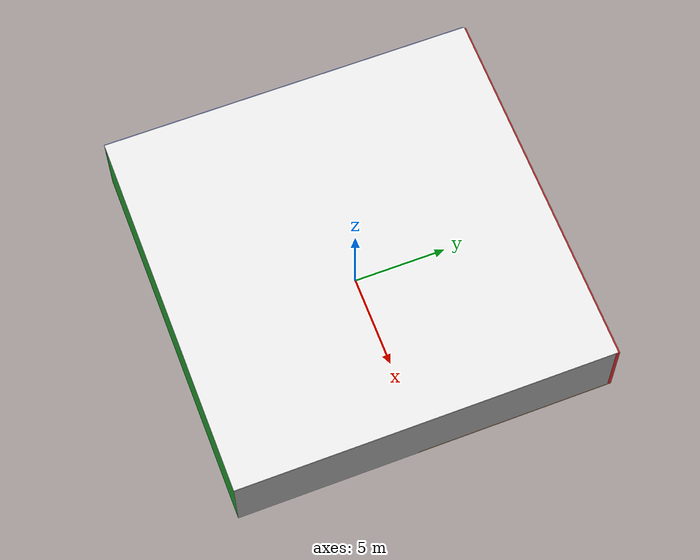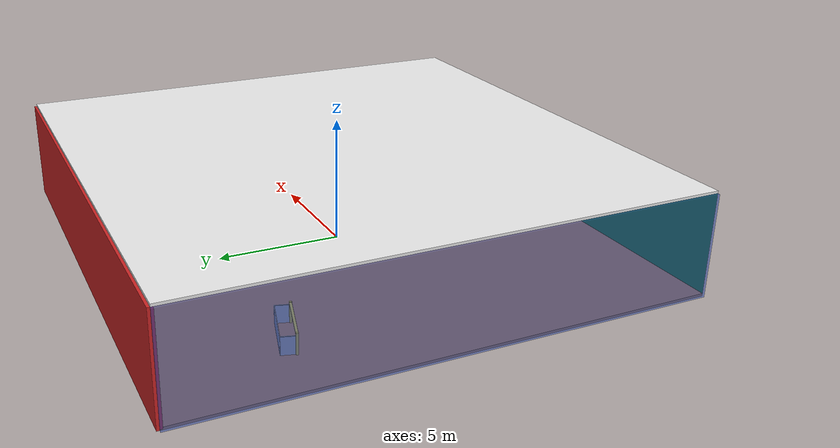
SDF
<sdf version="1.4">
 <world name="default">
  <physics type="ode">
   <max_step_size>0.001</max_step_size>
   <real_time_factor>1</real_time_factor>
   <real_time_update_rate>1000</real_time_update_rate>
   <gravity>0 0 -9.8</gravity>
  </physics>
  <scene><ambient>0.4 0.4 0.4 1</ambient><background>0.7 0.7 0.7 1</background><shadows>1</shadows></scene>
  <model name="Surrounding">
   <static>1</static>
   <link name="Ceiling">
    <collision name="Ceiling_Collision"><geometry><box><size>20 20 0.1</size></box></geometry></collision>
    <visual name="Ceiling_Visual">
     <geometry><box><size>20 20 0.1</size></box></geometry>
     <material>
      <script><uri>file://media/materials/scripts/gazebo.material</uri><name>Gazebo/White</name></script>
     </material>
    </visual>
    <pose>0 0 4.05 0 0 0</pose>
   </link>
   <link name="Wall_South">
    <collision name="Wall_South_Collision">
     <geometry><box><size>20 0 4</size></box></geometry>
     <pose>0 0 2 0 -0 0</pose>
    </collision>
    <visual name="Wall_South_Visual">
     <pose>0 0 2 0 -0 0</pose>
     <geometry><box><size>20 0 4</size></box></geometry>
     <material>
      <script><uri>file://media/materials/scripts/gazebo.material</uri><name>Gazebo/GreenGlow</name></script>
     </material>
    </visual>
    <velocity_decay><linear>0</linear><angular>0</angular></velocity_decay>
    <pose>0 -10 0 0 -0 0</pose>
   </link>
   <link name="Wall_East">
    <collision name="Wall_21_Collision">
     <geometry><box><size>20 0 4</size></box></geometry>
     <pose>0 0 2 0 -0 0</pose>
    </collision>
    <visual name="Wall_21_Visual">
     <pose>0 0 2 0 -0 0</pose>
     <geometry><box><size>20 0 4</size></box></geometry>
     <material>
      <script><uri>file://media/materials/scripts/gazebo.material</uri><name>Gazebo/GreyGradientSky</name></script>
     </material>
    </visual>
    <velocity_decay><linear>0</linear><angular>0</angular></velocity_decay>
    <pose>10 0 0 0 -0 1.5708</pose>
   </link>
   <link name="Wall_North">
    <collision name="Wall_22_Collision">
     <geometry><box><size>20 0.2 4</size></box></geometry>
     <pose>0 0 2 0 -0 0</pose>
    </collision>
    <visual name="Wall_22_Visual">
     <pose>0 0 2 0 -0 0</pose>
     <geometry><box><size>20 0.2 4</size></box></geometry>
     <material>
      <script><uri>file://media/materials/scripts/gazebo.material</uri><name>Gazebo/Red</name></script>
     </material>
    </visual>
    <velocity_decay><linear>0</linear><angular>0</angular></velocity_decay>
    <pose>0 10 0 0 -0 0</pose>
   </link>
   <link name="Wall_West">
    <collision name="Wall_23_Collision">
     <geometry><box><size>20 0.2 4</size></box></geometry>
     <pose>0 0 2 0 -0 0</pose>
    </collision>
    <visual name="Wall_23_Visual">
     <pose>0 0 2 0 -0 0</pose>
     <geometry><box><size>20 0.2 4</size></box></geometry>
     <material>
      <script><uri>file://media/materials/scripts/gazebo.material</uri><name>Gazebo/BlueTransparent</name></script>
     </material>
    </visual>
    <velocity_decay><linear>0</linear><angular>0</angular></velocity_decay>
    <pose>-10 0 0 0 0 -1.5708</pose>
   </link>
   <link name="Ground_link">
    <collision name="collision">
     <pose>0 0 .05 0 -0 0</pose>
     <geometry><box><size>20 20 0.1</size></box></geometry>
    </collision>
    <visual name="visual">
     <pose>0 0 .05 0 -0 0</pose>
     <geometry><box><size>20 20 0.1</size></box></geometry>
     <material>
      <script><uri>file://media/materials/scripts/gazebo.material</uri><name>Gazebo/WoodPallet</name></script>
     </material>
    </visual>
   </link>
   <static>1</static>
  </model>
  <spherical_coordinates>
   <surface_model>EARTH_WGS84</surface_model>
   <latitude_deg>0</latitude_deg>
   <longitude_deg>0</longitude_deg>
   <elevation>0</elevation>
   <heading_deg>0</heading_deg>
  </spherical_coordinates>
  <light name="lightball_0" type="diffuse">
   <diffuse>0.8 0.8 0.8 1</diffuse>
   <specular>0.2 0.2 0.2 1</specular>
   <attenuation>
    <range>100</range>
    <constant>0.7</constant>
    <linear>0.01</linear>
    <quadratic>0.001</quadratic>
   </attenuation>
   <direction>-0.5 0.1 -0.9</direction>
   <pose>9.0708230362 -9.03764051634 1.46250317366 0 0 0</pose>
  </light>
  <light name="lightball_1" type="diffuse">
   <diffuse>0.8 0.8 0.8 1</diffuse>
   <specular>0.2 0.2 0.2 1</specular>
   <attenuation>
    <range>100</range>
    <constant>0.7</constant>
    <linear>0.01</linear>
    <quadratic>0.001</quadratic>
   </attenuation>
   <direction>-0.5 0.1 -0.9</direction>
   <pose>-4.07191006096 -2.72152755741 1.73177012344 0 0 0</pose>
  </light>
  <light name="lightball_2" type="diffuse">
   <diffuse>0.8 0.8 0.8 1</diffuse>
   <specular>0.2 0.2 0.2 1</specular>
   <attenuation>
    <range>100</range>
    <constant>0.7</constant>
    <linear>0.01</linear>
    <quadratic>0.001</quadratic>
   </attenuation>
   <direction>-0.5 0.1 -0.9</direction>
   <pose>2.59763895305 -6.08014963056 1.33725907905 0 0 0</pose>
  </light>
  <light name="lightball_3" type="diffuse">
   <diffuse>0.8 0.8 0.8 1</diffuse>
   <specular>0.2 0.2 0.2 1</specular>
   <attenuation>
    <range>100</range>
    <constant>0.7</constant>
    <linear>0.01</linear>
    <quadratic>0.001</quadratic>
   </attenuation>
   <direction>-0.5 0.1 -0.9</direction>
   <pose>-0.137241666217 -8.73366921709 2.62100206152 0 0 0</pose>
  </light>
  <light name="lightball_4" type="diffuse">
   <diffuse>0.8 0.8 0.8 1</diffuse>
   <specular>0.2 0.2 0.2 1</specular>
   <attenuation>
    <range>100</range>
    <constant>0.7</constant>
    <linear>0.01</linear>
    <quadratic>0.001</quadratic>
   </attenuation>
   <direction>-0.5 0.1 -0.9</direction>
   <pose>7.71750712213 -0.539501905332 2.20395433292 0 0 0</pose>
  </light>
  <light name="lightball_5" type="diffuse">
   <diffuse>0.8 0.8 0.8 1</diffuse>
   <specular>0.2 0.2 0.2 1</specular>
   <attenuation>
    <range>100</range>
    <constant>0.7</constant>
    <linear>0.01</linear>
    <quadratic>0.001</quadratic>
   </attenuation>
   <direction>-0.5 0.1 -0.9</direction>
   <pose>-4.64722530775 8.26931883515 2.06321215452 0 0 0</pose>
  </light>
  <light name="lightball_6" type="diffuse">
   <diffuse>0.8 0.8 0.8 1</diffuse>
   <specular>0.2 0.2 0.2 1</specular>
   <attenuation>
    <range>100</range>
    <constant>0.7</constant>
    <linear>0.01</linear>
    <quadratic>0.001</quadratic>
   </attenuation>
   <direction>-0.5 0.1 -0.9</direction>
   <pose>9.15217222563 -5.22396656116 3.20089797107 0 0 0</pose>
  </light>
  <light name="lightball_7" type="diffuse">
   <diffuse>0.8 0.8 0.8 1</diffuse>
   <specular>0.2 0.2 0.2 1</specular>
   <attenuation>
    <range>100</range>
    <constant>0.7</constant>
    <linear>0.01</linear>
    <quadratic>0.001</quadratic>
   </attenuation>
   <direction>-0.5 0.1 -0.9</direction>
   <pose>-6.02512551782 4.35695018082 0.791825067594 0 0 0</pose>
  </light>
  <light name="lightball_8" type="diffuse">
   <diffuse>0.8 0.8 0.8 1</diffuse>
   <specular>0.2 0.2 0.2 1</specular>
   <attenuation>
    <range>100</range>
    <constant>0.7</constant>
    <linear>0.01</linear>
    <quadratic>0.001</quadratic>
   </attenuation>
   <direction>-0.5 0.1 -0.9</direction>
   <pose>-2.3312197789 -4.94513424549 1.16964103019 0 0 0</pose>
  </light>
  <include>
   <uri>model://robocup_3Dsim_goal</uri>
   <pose>-6.90153620421 4.6311672033 0 0 0 1.29440317275</pose>
  </include>
  <include><uri>model://cabinet</uri><pose>-2.26799470576 -7.22523907125 0 0 0 0.397372976006</pose></include>
  <include>
   <uri>model://textured_shapes</uri>
   <pose>1.36578749261 -0.983617192251 0 0 0 2.51139461535</pose>
  </include>
  <include>
   <uri>model://construction_cone</uri>
   <pose>1.78334397504 1.27151051885 0 0 0 2.88758442575</pose>
  </include>
  <include>
   <uri>model://robocup_3Dsim_goal</uri>
   <pose>5.00416151115 -5.23314318988 0 0 0 2.99595501636</pose>
  </include>
  <include><uri>model://cabinet</uri><pose>4.70546871369 1.29212661782 0 0 0 1.63588657407</pose></include>
 </world>
</sdf>

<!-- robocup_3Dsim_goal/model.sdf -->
<sdf version="1.5">
  <model name="robocup_3d_goal">
    <static>true</static>
    <link name="left_post">
      <pose>0 1.05 0.45 0 0 0</pose>
      <collision name="collision">
        <geometry>
          <cylinder>
            <radius>0.05</radius>
            <length>0.9</length>
          </cylinder>
        </geometry>
      </collision>
      <visual name="visual">
        <geometry>
          <cylinder>
            <radius>0.05</radius>
            <length>0.9</length>
          </cylinder>
        </geometry>
        <material>
          <script>
            <uri>file://media/materials/scripts/gazebo.material</uri>
            <name>Gazebo/ZincYellow</name>
          </script>
        </material>
      </visual>
    </link>
    <link name="left_support_horiz_lower">
      <pose>0.30 1.05 0.01 0 0 0</pose>
      <collision name="collision">
        <geometry>
          <box>
            <size>0.50 0.02 0.02</size>
          </box>
        </geometry>
      </collision>
      <visual name="visual">
        <geometry>
          <box>
            <size>0.50 0.02 0.02</size>
          </box>
        </geometry>
        <material>
          <script>
            <uri>file://media/materials/scripts/gazebo.material</uri>
            <name>Gazebo/White</name>
          </script>
        </material>
      </visual>
    </link>
    <link name="left_support_horiz_upper">
      <pose>0.30 1.05 0.79 0 0 0</pose>
      <collision name="collision">
        <geometry>
          <box>
            <size>0.50 0.02 0.02</size>
          </box>
        </geometry>
      </collision>
      <visual name="visual">
        <geometry>
          <box>
            <size>0.50 0.02 0.02</size>
          </box>
        </geometry>
        <material>
          <script>
            <uri>file://media/materials/scripts/gazebo.material</uri>
            <name>Gazebo/White</name>
          </script>
        </material>
      </visual>
    </link>
    <link name="left_support_vertical">
      <pose>0.56 1.05 0.4 0 1.5708 0</pose>
      <collision name="collision">
        <geometry>
          <box>
            <size>0.80 0.02 0.02</size>
          </box>
        </geometry>
      </collision>
      <visual name="visual">
        <geometry>
          <box>
            <size>0.80 0.02 0.02</size>
          </box>
        </geometry>
        <material>
          <script>
            <uri>file://media/materials/scripts/gazebo.material</uri>
            <name>Gazebo/White</name>
          </script>
        </material>
      </visual>
    </link>
    <link name="right_support_horiz_lower">
      <pose>0.30 -1.05 0.01 0 0 0</pose>
      <collision name="collision">
        <geometry>
          <box>
            <size>0.50 0.02 0.02</size>
          </box>
        </geometry>
      </collision>
      <visual name="visual">
        <geometry>
          <box>
            <size>0.50 0.02 0.02</size>
          </box>
        </geometry>
        <material>
          <script>
            <uri>file://media/materials/scripts/gazebo.material</uri>
            <name>Gazebo/White</name>
          </script>
        </material>
      </visual>
    </link>
    <link name="right_support_horiz_upper">
      <pose>0.30 -1.05 0.79 0 0 0</pose>
      <collision name="collision">
        <geometry>
          <box>
            <size>0.50 0.02 0.02</size>
          </box>
        </geometry>
      </collision>
      <visual name="visual">
        <geometry>
          <box>
            <size>0.50 0.02 0.02</size>
          </box>
        </geometry>
        <material>
          <script>
            <uri>file://media/materials/scripts/gazebo.material</uri>
            <name>Gazebo/White</name>
          </script>
        </material>
      </visual>
    </link>
    <link name="right_support_vertical">
      <pose>0.56 -1.05 0.4 0 1.5708 0</pose>
      <collision name="collision">
        <geometry>
          <box>
            <size>0.80 0.02 0.02</size>
          </box>
        </geometry>
      </collision>
      <visual name="visual">
        <geometry>
          <box>
            <size>0.80 0.02 0.02</size>
          </box>
        </geometry>
        <material>
          <script>
            <uri>file://media/materials/scripts/gazebo.material</uri>
            <name>Gazebo/White</name>
          </script>
        </material>
      </visual>
    </link>
    <link name="center_support_horiz_lower">
      <pose>0.56 0 0.01 0 1.5708 0</pose>
      <collision name="collision">
        <geometry>
          <box>
            <size>0.02 2.08 0.02</size>
          </box>
        </geometry>
      </collision>
      <visual name="visual">
        <geometry>
          <box>
            <size>0.02 2.08 0.02</size>
          </box>
        </geometry>
        <material>
          <script>
            <uri>file://media/materials/scripts/gazebo.material</uri>
            <name>Gazebo/White</name>
          </script>
        </material>
      </visual>
    </link>
    <link name="center_support_horiz_upper">
      <pose>0.56 0 0.79 0 1.5708 0</pose>
      <collision name="collision">
        <geometry>
          <box>
            <size>0.02 2.08 0.02</size>
          </box>
        </geometry>
      </collision>
      <visual name="visual">
        <geometry>
          <box>
            <size>0.02 2.08 0.02</size>
          </box>
        </geometry>
        <material>
          <script>
            <uri>file://media/materials/scripts/gazebo.material</uri>
            <name>Gazebo/White</name>
          </script>
        </material>
      </visual>
    </link>
    <link name="right_post">
      <pose>0 -1.05 0.45 0 0 0</pose>
      <collision name="collision">
        <geometry>
          <cylinder>
            <radius>0.05</radius>
            <length>0.9</length>
          </cylinder>
        </geometry>
      </collision>
      <visual name="visual">
        <geometry>
          <cylinder>
            <radius>0.05</radius>
            <length>0.9</length>
          </cylinder>
        </geometry>
        <material>
          <script>
            <uri>file://media/materials/scripts/gazebo.material</uri>
            <name>Gazebo/ZincYellow</name>
          </script>
        </material>
      </visual>
    </link>
    <link name="crossbar">
      <pose>0 0 0.85 1.57 1.57 0</pose>
      <collision name="collision">
        <geometry>
          <cylinder>
            <radius>0.05</radius>
            <length>2.0</length>
          </cylinder>
        </geometry>
      </collision>
      <visual name="visual">
        <geometry>
          <cylinder>
            <radius>0.05</radius>
            <length>2.0</length>
          </cylinder>
        </geometry>
        <material>
          <script>
            <uri>file://media/materials/scripts/gazebo.material</uri>
            <name>Gazebo/ZincYellow</name>
          </script>
        </material>
      </visual>
    </link>
    <link name="center_net">
      <pose>0.56 0 0.40 0 0 0</pose>
      <collision name="collision">
        <geometry>
          <box>
            <size>0.01 2.1 0.80</size>
          </box>
        </geometry>
      </collision>
      <visual name="visual">
        <geometry>
          <box>
            <size>0.01 2.1 0.80</size>
          </box>
        </geometry>
        <material>
          <script>
            <uri>model://../model_source/models/robocup09_spl_field/materials/scripts/</uri>
            <uri>model://../model_source/models/robocup09_spl_field/materials/textures/</uri>
            <name>RoboCup/Net</name>
          </script>
        </material>
      </visual>
    </link>
    <link name="left_net">
      <pose>0.30 1.05 0.40 0 0 0</pose>
      <collision name="collision">
        <geometry>
          <box>
            <size>0.50 0.01 0.76</size>
          </box>
        </geometry>
      </collision>
      <visual name="visual">
        <geometry>
          <box>
            <size>0.50 0.01 0.76</size>
          </box>
        </geometry>
        <material>
          <script>
            <uri>model://../model_source/models/robocup09_spl_field/materials/scripts/</uri>
            <uri>model://../model_source/models/robocup09_spl_field/materials/textures/</uri>
            <name>RoboCup/Net</name>
          </script>
        </material>
      </visual>
    </link>
    <link name="right_net">
      <pose>0.30 -1.05 0.40 0 0 0</pose>
      <collision name="collision">
        <geometry>
          <box>
            <size>0.50 0.01 0.76</size>
          </box>
        </geometry>
      </collision>
      <visual name="visual">
        <geometry>
          <box>
            <size>0.50 0.01 0.76</size>
          </box>
        </geometry>
        <material>
          <script>
            <uri>model://../model_source/models/robocup09_spl_field/materials/scripts/</uri>
            <uri>model://../model_source/models/robocup09_spl_field/materials/textures/</uri>
            <name>RoboCup/Net</name>
          </script>
        </material>
      </visual>
    </link>
  </model>
</sdf>

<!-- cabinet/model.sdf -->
<sdf version="1.5">
  <model name="cabinet">
    <static>true</static>
    <link name="cabinet_bottom_plate">
      <inertial>
        <pose>0 0 -1 0 0 0</pose>
        <inertia>
          <ixx>2.050000</ixx>
          <ixy>0</ixy>
          <ixz>0</ixz>
          <iyy>2.050000</iyy>
          <iyz>0</iyz>
          <izz>2.050000</izz>
        </inertia>
        <mass>25.000000</mass>
      </inertial>
      <collision name="cabinet_bottom_plate_geom">
        <pose>0 0 0.010000 0 0 0</pose>
        <geometry>
          <box>
            <size>0.450000 0.450000 0.020000</size>
          </box>
        </geometry>
      </collision>
      <visual name="cabinet_bottom_plate_geom_visual">
        <pose>0 0 0.010000 0 0 0</pose>
        <geometry>
          <box>
            <size>0.450000 0.450000 0.020000</size>
          </box>
        </geometry>
        <material>
          <script>
            <uri>model://media/materials/scripts/gazebo.material</uri>
            <name>Gazebo/Wood</name>
          </script>
        </material>
      </visual>
      <collision name="cabinet_bottom_plate_geom_cabinet_back_plate">
        <pose>0.235000 0 0.510000 0 0 0</pose>
        <geometry>
          <box>
            <size>0.020000 0.450000 1.020000</size>
          </box>
        </geometry>
      </collision>
      <visual name="cabinet_bottom_plate_geom_cabinet_back_plate_visual">
        <pose>0.235000 0 0.510000 0 0 0</pose>
        <geometry>
          <box>
            <size>0.020000 0.450000 1.020000</size>
          </box>
        </geometry>
        <material>
          <script>
            <uri>model://media/materials/scripts/gazebo.material</uri>
            <name>Gazebo/Wood</name>
          </script>
        </material>
      </visual>
      <collision name="cabinet_bottom_plate_geom_cabinet_left_plate">
        <pose>0 0.235000 0.510000 0 0 0</pose>
        <geometry>
          <box>
            <size>0.450000 0.020000 1.020000</size>
          </box>
        </geometry>
      </collision>
      <visual name="cabinet_bottom_plate_geom_cabinet_left_plate_visual">
        <pose>0 0.235000 0.510000 0 0 0</pose>
        <geometry>
          <box>
            <size>0.450000 0.020000 1.020000</size>
          </box>
        </geometry>
        <material>
          <script>
            <uri>model://media/materials/scripts/gazebo.material</uri>
            <name>Gazebo/Wood</name>
          </script>
        </material>
      </visual>
      <collision name="cabinet_bottom_plate_geom_cabinet_middle_plate">
        <pose>0 0 0.510000 0 0 0</pose>
        <geometry>
          <box>
            <size>0.450000 0.450000 0.020000</size>
          </box>
        </geometry>
      </collision>
      <visual name="cabinet_bottom_plate_geom_cabinet_middle_plate_visual">
        <pose>0 0 0.510000 0 0 0</pose>
        <geometry>
          <box>
            <size>0.450000 0.450000 0.020000</size>
          </box>
        </geometry>
        <material>
          <script>
            <uri>model://media/materials/scripts/gazebo.material</uri>
            <name>Gazebo/Wood</name>
          </script>
        </material>
      </visual>
      <collision name="cabinet_bottom_plate_geom_cabinet_right_plate">
        <pose>0 -0.235000 0.510000 0 0 0</pose>
        <geometry>
          <box>
            <size>0.450000 0.020000 1.020000</size>
          </box>
        </geometry>
      </collision>
      <visual name="cabinet_bottom_plate_geom_cabinet_right_plate_visual">
        <pose>0 -0.235000 0.510000 0 0 0</pose>
        <geometry>
          <box>
            <size>0.450000 0.020000 1.020000</size>
          </box>
        </geometry>
        <material>
          <script>
            <uri>model://media/materials/scripts/gazebo.material</uri>
            <name>Gazebo/Wood</name>
          </script>
        </material>
      </visual>
      <collision name="cabinet_bottom_plate_geom_cabinet_top_plate">
        <pose>0 0 1.010000 0 0 0</pose>
        <geometry>
          <box>
            <size>0.450000 0.450000 0.020000</size>
          </box>
        </geometry>
      </collision>
      <visual name="cabinet_bottom_plate_geom_cabinet_top_plate_visual">
        <pose>0 0 1.010000 0 0 0</pose>
        <geometry>
          <box>
            <size>0.450000 0.450000 0.020000</size>
          </box>
        </geometry>
        <material>
          <script>
            <uri>model://media/materials/scripts/gazebo.material</uri>
            <name>Gazebo/Wood</name>
          </script>
        </material>
      </visual>
    </link>
  </model>
</sdf>

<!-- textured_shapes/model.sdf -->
<sdf version="1.6">
  <model name="textured_shapes">
    <pose>0 0 0.5 0 0 0</pose>
    <link name="box">
      <pose>0 -1.5 0 0 0 0</pose>
      <collision name="collision">
        <geometry>
          <box>
            <size>1 1 1</size>
          </box>
        </geometry>
      </collision>
      <visual name="visual">
        <geometry>
          <box>
            <size>1 1 1</size>
          </box>
        </geometry>
        <material>
          <script>
            <uri>model://../model_source/models/textured_shapes/materials/scripts</uri>
            <uri>model://../model_source/models/textured_shapes/materials/textures</uri>
            <name>TexturedShape/Squares</name>
          </script>
        </material>
      </visual>
    </link>
    <link name="sphere">
      <collision name="collision">
        <geometry>
          <sphere>
            <radius>0.5</radius>
          </sphere>
        </geometry>
      </collision>
      <visual name="visual">
        <geometry>
          <sphere>
            <radius>0.5</radius>
          </sphere>
        </geometry>
        <material>
          <script>
            <uri>model://../model_source/models/textured_shapes/materials/scripts</uri>
            <uri>model://../model_source/models/textured_shapes/materials/textures</uri>
            <name>TexturedShape/Squares</name>
          </script>
        </material>
      </visual>
    </link>
    <link name="cylinder">
      <pose>0 1.5 0 0 0 0</pose>
      <collision name="collision">
        <geometry>
          <cylinder>
            <radius>0.5</radius>
            <length>1</length>
          </cylinder>
        </geometry>
      </collision>
      <visual name="visual">
        <geometry>
          <cylinder>
            <radius>0.5</radius>
            <length>1</length>
          </cylinder>
        </geometry>
        <material>
          <script>
            <uri>model://../model_source/models/textured_shapes/materials/scripts</uri>
            <uri>model://../model_source/models/textured_shapes/materials/textures</uri>
            <name>TexturedShape/Squares</name>
          </script>
        </material>
      </visual>
    </link>
  </model>
</sdf>

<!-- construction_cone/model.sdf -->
<sdf version="1.5">
  <model name="Construction Cone">
    <link name="link">
      <collision name="collision">
        <geometry>
          <mesh>
            <scale>10 10 10</scale>
            <uri>file://isr-testbed/construction_cone/meshes/construction_cone.dae</uri>
          </mesh>
        </geometry>
      </collision>
      <visual name="visual">
        <geometry>
          <mesh>
            <scale>10 10 10</scale>
            <uri>file://isr-testbed/construction_cone/meshes/construction_cone.dae</uri>
          </mesh>
        </geometry>
      </visual>
    </link>
  </model>
</sdf>
